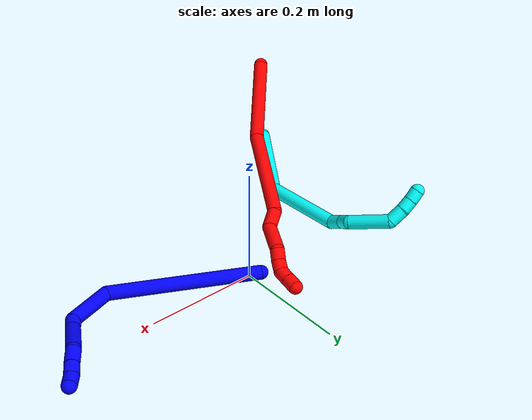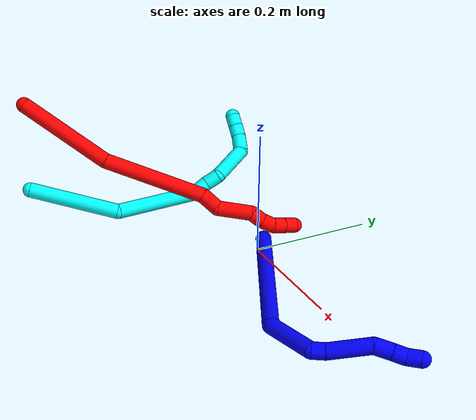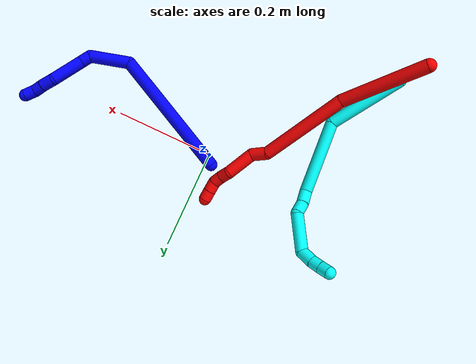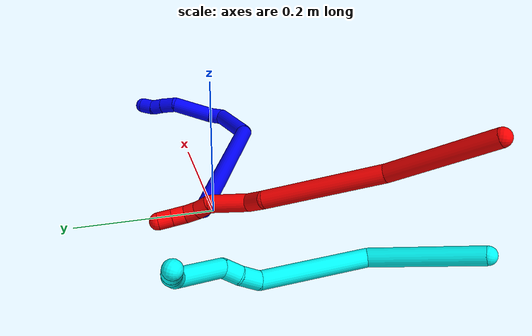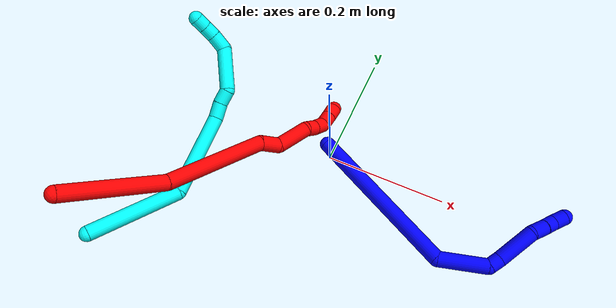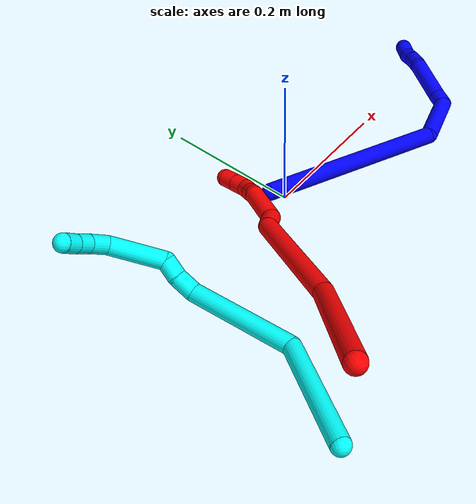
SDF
<sdf version="1.7">
 <world name="default">
  <plugin name="TubeGeneratorPlugin" filename="libtube_generator_plugin.so"/>
  <model name="photoneo_s_sensor">
   <static>1</static>
   <pose>0 0 2 1.57079 1.57079 3.14159</pose>
   <link name="link">
    <inertial><mass>0.1</mass></inertial>
    <sensor name="sensor" type="depth">
     <update_rate>30</update_rate>
     <camera>
      <horizontal_fov>1.22</horizontal_fov>
      <image><width>1920</width><height>1200</height><format>B8G8R8</format></image>
      <clip><near>0.1</near><far>4</far></clip>
      <depth_camera><output>points</output></depth_camera>
     </camera>
     <plugin name="camera_plugin" filename="libgazebo_ros_depth_camera.so">
      <baseline>0.2</baseline>
      <alwaysOn>1</alwaysOn>
      <updateRate>0.0</updateRate>
      <cameraName>camera_ir</cameraName>
      <imageTopicName>/camera/color/image_raw</imageTopicName>
      <cameraInfoTopicName>/camera/color/camera_info</cameraInfoTopicName>
      <depthImageTopicName>/camera/depth/image_raw</depthImageTopicName>
      <depthImageCameraInfoTopicName>/camera/depth/camera_info</depthImageCameraInfoTopicName>
      <pointCloudTopicName>/camera/depth/points</pointCloudTopicName>
      <frameName>fr_optical</frameName>
      <pointCloudCutoff>0.1</pointCloudCutoff>
      <pointCloudCutoffMax>2.0</pointCloudCutoffMax>
      <distortionK1>0</distortionK1>
      <distortionK2>0</distortionK2>
      <distortionK3>0</distortionK3>
      <distortionT1>0</distortionT1>
      <distortionT2>0</distortionT2>
      <CxPrime>0</CxPrime>
      <Cx>0</Cx>
      <Cy>0</Cy>
      <focalLength>0</focalLength>
      <hackBaseline>0</hackBaseline>
     </plugin>
    </sensor>
   </link>
  </model>
  <gravity>0 0 -9.8</gravity>
  <magnetic_field>6e-06 2.3e-05 -4.2e-05</magnetic_field>
  <atmosphere type="adiabatic"/>
  <physics name="default_physics" default="0" type="ode">
   <max_step_size>0.003</max_step_size>
   <real_time_factor>1</real_time_factor>
   <real_time_update_rate>1000</real_time_update_rate>
   <max_contacts>10000</max_contacts>
   <ode>
    <solver>
     <type>quick</type>
     <iters>100</iters>
     <sor>1.3</sor>
     <use_dynamic_moi_rescaling>0</use_dynamic_moi_rescaling>
    </solver>
    <constraints>
     <contact_max_correcting_vel>0</contact_max_correcting_vel>
     <contact_surface_layer>0.001</contact_surface_layer>
     <cfm>0</cfm>
     <erp>0.2</erp>
    </constraints>
   </ode>
  </physics>
  <scene><ambient>0.4 0.4 0.4 1</ambient><background>0.7 0.7 0.7 1</background><shadows>0</shadows></scene>
  <audio><device>default</device></audio>
  <spherical_coordinates>
   <surface_model>EARTH_WGS84</surface_model>
   <latitude_deg>0</latitude_deg>
   <longitude_deg>0</longitude_deg>
   <elevation>0</elevation>
   <heading_deg>0</heading_deg>
  </spherical_coordinates>
  <model name="bin">
   <static>1</static>
   <link name="bottom">
    <collision name="collision-bottom">
     <pose>0 0 -0.01 0 -0 0</pose>
     <geometry><box><size>0.8 0.6 0.02</size></box></geometry>
     <surface>
      <friction><ode><mu>100</mu><mu2>100</mu2></ode></friction>
      <contact><collide_bitmask>65535</collide_bitmask></contact>
     </surface>
    </collision>
   </link>
   <link name="west_wall">
    <collision name="collision-west_wall">
     <pose>-0.41 0 0.1 0 -0 0</pose>
     <geometry><box><size>0.02 0.6 0.2</size></box></geometry>
     <surface>
      <friction><ode><mu>100</mu><mu2>100</mu2></ode></friction>
      <contact><collide_bitmask>65535</collide_bitmask></contact>
     </surface>
    </collision>
   </link>
   <link name="east_wall">
    <collision name="collision-east_wall">
     <pose>0.41 0 0.1 0 -0 0</pose>
     <geometry><box><size>0.02 0.6 0.2</size></box></geometry>
     <surface>
      <friction><ode><mu>100</mu><mu2>100</mu2></ode></friction>
      <contact><collide_bitmask>65535</collide_bitmask></contact>
     </surface>
    </collision>
   </link>
   <link name="south_wall">
    <collision name="collision-south_wall">
     <pose>0 -0.31 0.1 0 -0 0</pose>
     <geometry><box><size>0.8 0.02 0.2</size></box></geometry>
     <surface>
      <friction><ode><mu>100</mu><mu2>100</mu2></ode></friction>
      <contact><collide_bitmask>65535</collide_bitmask></contact>
     </surface>
    </collision>
   </link>
   <link name="north_wall">
    <collision name="collision-north_wall">
     <pose>0 0.31 0.1 0 -0 0</pose>
     <geometry><box><size>0.8 0.02 0.2</size></box></geometry>
     <surface>
      <friction><ode><mu>100</mu><mu2>100</mu2></ode></friction>
      <contact><collide_bitmask>65535</collide_bitmask></contact>
     </surface>
    </collision>
   </link>
  </model>
  <model name="1">
   <static>0</static>
   <link name="1">
    <collision name="collision-cylinder-e_1_1_4">
     <pose>-0.001018 -0.007005 0.131473 0.05323 -0.007732 -0.000206</pose>
     <geometry><cylinder><radius>0.0125</radius><length>0.263327</length></cylinder></geometry>
     <surface>
      <friction><ode><mu>1.16</mu><mu2>1.16</mu2><slip1>0</slip1><slip2>0</slip2></ode></friction>
      <contact><ode><kp>1e+06</kp><kd>1</kd><max_vel>0</max_vel><min_depth>0.001</min_depth></ode></contact>
     </surface>
    </collision>
    <visual name="visual-cylinder-e_1_1_4">
     <pose>-0.001018 -0.007005 0.131473 0.05323 -0.007732 -0.000206</pose>
     <geometry><cylinder><radius>0.0125</radius><length>0.263327</length></cylinder></geometry>
     <material><ambient>0 0 1 1</ambient></material>
    </visual>
    <collision name="collision-cylinder-e_2_4_5">
     <pose>0.023924 -0.011041 0.29345 -0.09703 0.702778 -0.035596</pose>
     <geometry><cylinder><radius>0.0125</radius><length>0.08033</length></cylinder></geometry>
     <surface>
      <friction><ode><mu>1.16</mu><mu2>1.16</mu2><slip1>0</slip1><slip2>0</slip2></ode></friction>
      <contact><ode><kp>1e+06</kp><kd>1</kd><max_vel>0</max_vel><min_depth>0.001</min_depth></ode></contact>
     </surface>
    </collision>
    <visual name="visual-cylinder-e_2_4_5">
     <pose>0.023924 -0.011041 0.29345 -0.09703 0.702778 -0.035596</pose>
     <geometry><cylinder><radius>0.0125</radius><length>0.08033</length></cylinder></geometry>
     <material><ambient>0 0 1 1</ambient></material>
    </visual>
    <collision name="collision-cylinder-e_3_5_6">
     <pose>0.059972 -0.005813 0.325359 -1.01397 1.31299 -0.808717</pose>
     <geometry><cylinder><radius>0.0125</radius><length>0.020866</length></cylinder></geometry>
     <surface>
      <friction><ode><mu>1.16</mu><mu2>1.16</mu2><slip1>0</slip1><slip2>0</slip2></ode></friction>
      <contact><ode><kp>1e+06</kp><kd>1</kd><max_vel>0</max_vel><min_depth>0.001</min_depth></ode></contact>
     </surface>
    </collision>
    <visual name="visual-cylinder-e_3_5_6">
     <pose>0.059972 -0.005813 0.325359 -1.01397 1.31299 -0.808717</pose>
     <geometry><cylinder><radius>0.0125</radius><length>0.020866</length></cylinder></geometry>
     <material><ambient>0 0 1 1</ambient></material>
    </visual>
    <collision name="collision-cylinder-e_4_6_7">
     <pose>0.100298 0.009621 0.329941 -1.33429 1.14941 -0.943359</pose>
     <geometry><cylinder><radius>0.0125</radius><length>0.066273</length></cylinder></geometry>
     <surface>
      <friction><ode><mu>1.16</mu><mu2>1.16</mu2><slip1>0</slip1><slip2>0</slip2></ode></friction>
      <contact><ode><kp>1e+06</kp><kd>1</kd><max_vel>0</max_vel><min_depth>0.001</min_depth></ode></contact>
     </surface>
    </collision>
    <visual name="visual-cylinder-e_4_6_7">
     <pose>0.100298 0.009621 0.329941 -1.33429 1.14941 -0.943359</pose>
     <geometry><cylinder><radius>0.0125</radius><length>0.066273</length></cylinder></geometry>
     <material><ambient>0 0 1 1</ambient></material>
    </visual>
    <collision name="collision-cylinder-e_5_7_8">
     <pose>0.143513 0.022229 0.335931 0.199505 1.35304 0.160375</pose>
     <geometry><cylinder><radius>0.0125</radius><length>0.026582</length></cylinder></geometry>
     <surface>
      <friction><ode><mu>1.16</mu><mu2>1.16</mu2><slip1>0</slip1><slip2>0</slip2></ode></friction>
      <contact><ode><kp>1e+06</kp><kd>1</kd><max_vel>0</max_vel><min_depth>0.001</min_depth></ode></contact>
     </surface>
    </collision>
    <visual name="visual-cylinder-e_5_7_8">
     <pose>0.143513 0.022229 0.335931 0.199505 1.35304 0.160375</pose>
     <geometry><cylinder><radius>0.0125</radius><length>0.026582</length></cylinder></geometry>
     <material><ambient>0 0 1 1</ambient></material>
    </visual>
    <collision name="collision-cylinder-e_6_8_9">
     <pose>0.166634 0.020618 0.340196 0.622837 1.3965 0.52773</pose>
     <geometry><cylinder><radius>0.0125</radius><length>0.020601</length></cylinder></geometry>
     <surface>
      <friction><ode><mu>1.16</mu><mu2>1.16</mu2><slip1>0</slip1><slip2>0</slip2></ode></friction>
      <contact><ode><kp>1e+06</kp><kd>1</kd><max_vel>0</max_vel><min_depth>0.001</min_depth></ode></contact>
     </surface>
    </collision>
    <visual name="visual-cylinder-e_6_8_9">
     <pose>0.166634 0.020618 0.340196 0.622837 1.3965 0.52773</pose>
     <geometry><cylinder><radius>0.0125</radius><length>0.020601</length></cylinder></geometry>
     <material><ambient>0 0 1 1</ambient></material>
    </visual>
    <collision name="collision-cylinder-e_7_9_2">
     <pose>0.187141 0.02172 0.344691 -0.613798 1.22586 -0.438591</pose>
     <geometry><cylinder><radius>0.0125</radius><length>0.022023</length></cylinder></geometry>
     <surface>
      <friction><ode><mu>1.16</mu><mu2>1.16</mu2><slip1>0</slip1><slip2>0</slip2></ode></friction>
      <contact><ode><kp>1e+06</kp><kd>1</kd><max_vel>0</max_vel><min_depth>0.001</min_depth></ode></contact>
     </surface>
    </collision>
    <visual name="visual-cylinder-e_7_9_2">
     <pose>0.187141 0.02172 0.344691 -0.613798 1.22586 -0.438591</pose>
     <geometry><cylinder><radius>0.0125</radius><length>0.022023</length></cylinder></geometry>
     <material><ambient>0 0 1 1</ambient></material>
    </visual>
    <collision name="collision-sphere-2">
     <pose>0.197504 0.023865 0.347734 0 -0 0</pose>
     <geometry><sphere><radius>0.0125</radius></sphere></geometry>
     <surface>
      <friction><ode><mu>1.16</mu><mu2>1.16</mu2><slip1>0</slip1><slip2>0</slip2></ode></friction>
      <contact><ode><kp>1e+06</kp><kd>1</kd><max_vel>0</max_vel><min_depth>0.001</min_depth></ode></contact>
     </surface>
    </collision>
    <visual name="visual-sphere-2">
     <pose>0.197504 0.023865 0.347734 0 -0 0</pose>
     <geometry><sphere><radius>0.0125</radius></sphere></geometry>
     <material><ambient>0 0 1 1</ambient></material>
    </visual>
    <collision name="collision-sphere-9">
     <pose>0.176778 0.019576 0.341647 0 -0 0</pose>
     <geometry><sphere><radius>0.0125</radius></sphere></geometry>
     <surface>
      <friction><ode><mu>1.16</mu><mu2>1.16</mu2><slip1>0</slip1><slip2>0</slip2></ode></friction>
      <contact><ode><kp>1e+06</kp><kd>1</kd><max_vel>0</max_vel><min_depth>0.001</min_depth></ode></contact>
     </surface>
    </collision>
    <visual name="visual-sphere-9">
     <pose>0.176778 0.019576 0.341647 0 -0 0</pose>
     <geometry><sphere><radius>0.0125</radius></sphere></geometry>
     <material><ambient>0 0 1 1</ambient></material>
    </visual>
    <collision name="collision-sphere-4">
     <pose>-0.002036 -0.01401 0.262946 0 -0 0</pose>
     <geometry><sphere><radius>0.0125</radius></sphere></geometry>
     <surface>
      <friction><ode><mu>1.16</mu><mu2>1.16</mu2><slip1>0</slip1><slip2>0</slip2></ode></friction>
      <contact><ode><kp>1e+06</kp><kd>1</kd><max_vel>0</max_vel><min_depth>0.001</min_depth></ode></contact>
     </surface>
    </collision>
    <visual name="visual-sphere-4">
     <pose>-0.002036 -0.01401 0.262946 0 -0 0</pose>
     <geometry><sphere><radius>0.0125</radius></sphere></geometry>
     <material><ambient>0 0 1 1</ambient></material>
    </visual>
    <collision name="collision-sphere-1">
     <geometry><sphere><radius>0.0125</radius></sphere></geometry>
     <surface>
      <friction><ode><mu>1.16</mu><mu2>1.16</mu2><slip1>0</slip1><slip2>0</slip2></ode></friction>
      <contact><ode><kp>1e+06</kp><kd>1</kd><max_vel>0</max_vel><min_depth>0.001</min_depth></ode></contact>
     </surface>
    </collision>
    <visual name="visual-sphere-1">
     <geometry><sphere><radius>0.0125</radius></sphere></geometry>
     <material><ambient>0 0 1 1</ambient></material>
    </visual>
    <collision name="collision-sphere-8">
     <pose>0.15649 0.02166 0.338745 0 -0 0</pose>
     <geometry><sphere><radius>0.0125</radius></sphere></geometry>
     <surface>
      <friction><ode><mu>1.16</mu><mu2>1.16</mu2><slip1>0</slip1><slip2>0</slip2></ode></friction>
      <contact><ode><kp>1e+06</kp><kd>1</kd><max_vel>0</max_vel><min_depth>0.001</min_depth></ode></contact>
     </surface>
    </collision>
    <visual name="visual-sphere-8">
     <pose>0.15649 0.02166 0.338745 0 -0 0</pose>
     <geometry><sphere><radius>0.0125</radius></sphere></geometry>
     <material><ambient>0 0 1 1</ambient></material>
    </visual>
    <collision name="collision-sphere-5">
     <pose>0.049884 -0.008072 0.323953 0 -0 0</pose>
     <geometry><sphere><radius>0.0125</radius></sphere></geometry>
     <surface>
      <friction><ode><mu>1.16</mu><mu2>1.16</mu2><slip1>0</slip1><slip2>0</slip2></ode></friction>
      <contact><ode><kp>1e+06</kp><kd>1</kd><max_vel>0</max_vel><min_depth>0.001</min_depth></ode></contact>
     </surface>
    </collision>
    <visual name="visual-sphere-5">
     <pose>0.049884 -0.008072 0.323953 0 -0 0</pose>
     <geometry><sphere><radius>0.0125</radius></sphere></geometry>
     <material><ambient>0 0 1 1</ambient></material>
    </visual>
    <collision name="collision-sphere-6">
     <pose>0.070061 -0.003555 0.326765 0 -0 0</pose>
     <geometry><sphere><radius>0.0125</radius></sphere></geometry>
     <surface>
      <friction><ode><mu>1.16</mu><mu2>1.16</mu2><slip1>0</slip1><slip2>0</slip2></ode></friction>
      <contact><ode><kp>1e+06</kp><kd>1</kd><max_vel>0</max_vel><min_depth>0.001</min_depth></ode></contact>
     </surface>
    </collision>
    <visual name="visual-sphere-6">
     <pose>0.070061 -0.003555 0.326765 0 -0 0</pose>
     <geometry><sphere><radius>0.0125</radius></sphere></geometry>
     <material><ambient>0 0 1 1</ambient></material>
    </visual>
    <collision name="collision-sphere-7">
     <pose>0.130536 0.022798 0.333116 0 -0 0</pose>
     <geometry><sphere><radius>0.0125</radius></sphere></geometry>
     <surface>
      <friction><ode><mu>1.16</mu><mu2>1.16</mu2><slip1>0</slip1><slip2>0</slip2></ode></friction>
      <contact><ode><kp>1e+06</kp><kd>1</kd><max_vel>0</max_vel><min_depth>0.001</min_depth></ode></contact>
     </surface>
    </collision>
    <visual name="visual-sphere-7">
     <pose>0.130536 0.022798 0.333116 0 -0 0</pose>
     <geometry><sphere><radius>0.0125</radius></sphere></geometry>
     <material><ambient>0 0 1 1</ambient></material>
    </visual>
    <inertial>
     <pose>0.041842 -0.001442 0.220754 0 -0 0</pose>
     <mass>0.5</mass>
     <inertia><ixx>0.00158</ixx><ixy>0</ixy><ixz>0</ixz><iyy>0.001597</iyy><iyz>0</iyz><izz>4.4e-05</izz></inertia>
    </inertial>
   </link>
   <pose>-0.011557 0.016716 0.01164 1.50938 0.223727 1.11888</pose>
  </model>
  <model name="2">
   <static>0</static>
   <link name="2">
    <collision name="collision-cylinder-e_1_1_4">
     <pose>-0.003982 0.048331 -0.063468 -2.49078 -0.049869 0.147566</pose>
     <geometry><cylinder><radius>0.0125</radius><length>0.159749</length></cylinder></geometry>
     <surface>
      <friction><ode><mu>1.16</mu><mu2>1.16</mu2><slip1>0</slip1><slip2>0</slip2></ode></friction>
      <contact><ode><kp>1e+06</kp><kd>1</kd><max_vel>0</max_vel><min_depth>0.001</min_depth></ode></contact>
     </surface>
    </collision>
    <visual name="visual-cylinder-e_1_1_4">
     <pose>-0.003982 0.048331 -0.063468 -2.49078 -0.049869 0.147566</pose>
     <geometry><cylinder><radius>0.0125</radius><length>0.159749</length></cylinder></geometry>
     <material><ambient>1 0 0 1</ambient></material>
    </visual>
    <collision name="collision-cylinder-e_2_4_5">
     <pose>0.001401 0.130461 -0.204197 -2.7292 0.110592 -0.517405</pose>
     <geometry><cylinder><radius>0.0125</radius><length>0.169699</length></cylinder></geometry>
     <surface>
      <friction><ode><mu>1.16</mu><mu2>1.16</mu2><slip1>0</slip1><slip2>0</slip2></ode></friction>
      <contact><ode><kp>1e+06</kp><kd>1</kd><max_vel>0</max_vel><min_depth>0.001</min_depth></ode></contact>
     </surface>
    </collision>
    <visual name="visual-cylinder-e_2_4_5">
     <pose>0.001401 0.130461 -0.204197 -2.7292 0.110592 -0.517405</pose>
     <geometry><cylinder><radius>0.0125</radius><length>0.169699</length></cylinder></geometry>
     <material><ambient>1 0 0 1</ambient></material>
    </visual>
    <collision name="collision-cylinder-e_3_5_6">
     <pose>0.006239 0.174671 -0.293114 -2.41258 -0.281929 0.712127</pose>
     <geometry><cylinder><radius>0.0125</radius><length>0.03254</length></cylinder></geometry>
     <surface>
      <friction><ode><mu>1.16</mu><mu2>1.16</mu2><slip1>0</slip1><slip2>0</slip2></ode></friction>
      <contact><ode><kp>1e+06</kp><kd>1</kd><max_vel>0</max_vel><min_depth>0.001</min_depth></ode></contact>
     </surface>
    </collision>
    <visual name="visual-cylinder-e_3_5_6">
     <pose>0.006239 0.174671 -0.293114 -2.41258 -0.281929 0.712127</pose>
     <geometry><cylinder><radius>0.0125</radius><length>0.03254</length></cylinder></geometry>
     <material><ambient>1 0 0 1</ambient></material>
    </visual>
    <collision name="collision-cylinder-e_4_6_7">
     <pose>0.004003 0.190935 -0.332189 -2.93127 0.081517 -0.737402</pose>
     <geometry><cylinder><radius>0.0125</radius><length>0.05626</length></cylinder></geometry>
     <surface>
      <friction><ode><mu>1.16</mu><mu2>1.16</mu2><slip1>0</slip1><slip2>0</slip2></ode></friction>
      <contact><ode><kp>1e+06</kp><kd>1</kd><max_vel>0</max_vel><min_depth>0.001</min_depth></ode></contact>
     </surface>
    </collision>
    <visual name="visual-cylinder-e_4_6_7">
     <pose>0.004003 0.190935 -0.332189 -2.93127 0.081517 -0.737402</pose>
     <geometry><cylinder><radius>0.0125</radius><length>0.05626</length></cylinder></geometry>
     <material><ambient>1 0 0 1</ambient></material>
    </visual>
    <collision name="collision-cylinder-e_5_7_8">
     <pose>0.007751 0.203608 -0.36769 -2.44073 0.136879 -0.370756</pose>
     <geometry><cylinder><radius>0.0125</radius><length>0.02135</length></cylinder></geometry>
     <surface>
      <friction><ode><mu>1.16</mu><mu2>1.16</mu2><slip1>0</slip1><slip2>0</slip2></ode></friction>
      <contact><ode><kp>1e+06</kp><kd>1</kd><max_vel>0</max_vel><min_depth>0.001</min_depth></ode></contact>
     </surface>
    </collision>
    <visual name="visual-cylinder-e_5_7_8">
     <pose>0.007751 0.203608 -0.36769 -2.44073 0.136879 -0.370756</pose>
     <geometry><cylinder><radius>0.0125</radius><length>0.02135</length></cylinder></geometry>
     <material><ambient>1 0 0 1</ambient></material>
    </visual>
    <collision name="collision-cylinder-e_6_8_9">
     <pose>0.010774 0.215173 -0.384466 -2.64195 0.156861 -0.597598</pose>
     <geometry><cylinder><radius>0.0125</radius><length>0.020055</length></cylinder></geometry>
     <surface>
      <friction><ode><mu>1.16</mu><mu2>1.16</mu2><slip1>0</slip1><slip2>0</slip2></ode></friction>
      <contact><ode><kp>1e+06</kp><kd>1</kd><max_vel>0</max_vel><min_depth>0.001</min_depth></ode></contact>
     </surface>
    </collision>
    <visual name="visual-cylinder-e_6_8_9">
     <pose>0.010774 0.215173 -0.384466 -2.64195 0.156861 -0.597598</pose>
     <geometry><cylinder><radius>0.0125</radius><length>0.020055</length></cylinder></geometry>
     <material><ambient>1 0 0 1</ambient></material>
    </visual>
    <collision name="collision-cylinder-e_7_9_10">
     <pose>0.016789 0.221124 -0.402153 -3.00835 0.455827 -2.58141</pose>
     <geometry><cylinder><radius>0.0125</radius><length>0.020211</length></cylinder></geometry>
     <surface>
      <friction><ode><mu>1.16</mu><mu2>1.16</mu2><slip1>0</slip1><slip2>0</slip2></ode></friction>
      <contact><ode><kp>1e+06</kp><kd>1</kd><max_vel>0</max_vel><min_depth>0.001</min_depth></ode></contact>
     </surface>
    </collision>
    <visual name="visual-cylinder-e_7_9_10">
     <pose>0.016789 0.221124 -0.402153 -3.00835 0.455827 -2.58141</pose>
     <geometry><cylinder><radius>0.0125</radius><length>0.020211</length></cylinder></geometry>
     <material><ambient>1 0 0 1</ambient></material>
    </visual>
    <collision name="collision-cylinder-e_8_10_2">
     <pose>0.025795 0.223413 -0.420058 -3.02051 0.469769 -2.64544</pose>
     <geometry><cylinder><radius>0.0125</radius><length>0.020136</length></cylinder></geometry>
     <surface>
      <friction><ode><mu>1.16</mu><mu2>1.16</mu2><slip1>0</slip1><slip2>0</slip2></ode></friction>
      <contact><ode><kp>1e+06</kp><kd>1</kd><max_vel>0</max_vel><min_depth>0.001</min_depth></ode></contact>
     </surface>
    </collision>
    <visual name="visual-cylinder-e_8_10_2">
     <pose>0.025795 0.223413 -0.420058 -3.02051 0.469769 -2.64544</pose>
     <geometry><cylinder><radius>0.0125</radius><length>0.020136</length></cylinder></geometry>
     <material><ambient>1 0 0 1</ambient></material>
    </visual>
    <collision name="collision-sphere-2">
     <pose>0.030353 0.224498 -0.42897 0 -0 0</pose>
     <geometry><sphere><radius>0.0125</radius></sphere></geometry>
     <surface>
      <friction><ode><mu>1.16</mu><mu2>1.16</mu2><slip1>0</slip1><slip2>0</slip2></ode></friction>
      <contact><ode><kp>1e+06</kp><kd>1</kd><max_vel>0</max_vel><min_depth>0.001</min_depth></ode></contact>
     </surface>
    </collision>
    <visual name="visual-sphere-2">
     <pose>0.030353 0.224498 -0.42897 0 -0 0</pose>
     <geometry><sphere><radius>0.0125</radius></sphere></geometry>
     <material><ambient>1 0 0 1</ambient></material>
    </visual>
    <collision name="collision-sphere-10">
     <pose>0.021237 0.222329 -0.411146 0 -0 0</pose>
     <geometry><sphere><radius>0.0125</radius></sphere></geometry>
     <surface>
      <friction><ode><mu>1.16</mu><mu2>1.16</mu2><slip1>0</slip1><slip2>0</slip2></ode></friction>
      <contact><ode><kp>1e+06</kp><kd>1</kd><max_vel>0</max_vel><min_depth>0.001</min_depth></ode></contact>
     </surface>
    </collision>
    <visual name="visual-sphere-10">
     <pose>0.021237 0.222329 -0.411146 0 -0 0</pose>
     <geometry><sphere><radius>0.0125</radius></sphere></geometry>
     <material><ambient>1 0 0 1</ambient></material>
    </visual>
    <collision name="collision-sphere-9">
     <pose>0.01234 0.219918 -0.39316 0 -0 0</pose>
     <geometry><sphere><radius>0.0125</radius></sphere></geometry>
     <surface>
      <friction><ode><mu>1.16</mu><mu2>1.16</mu2><slip1>0</slip1><slip2>0</slip2></ode></friction>
      <contact><ode><kp>1e+06</kp><kd>1</kd><max_vel>0</max_vel><min_depth>0.001</min_depth></ode></contact>
     </surface>
    </collision>
    <visual name="visual-sphere-9">
     <pose>0.01234 0.219918 -0.39316 0 -0 0</pose>
     <geometry><sphere><radius>0.0125</radius></sphere></geometry>
     <material><ambient>1 0 0 1</ambient></material>
    </visual>
    <collision name="collision-sphere-4">
     <pose>-0.007963 0.096661 -0.126936 0 -0 0</pose>
     <geometry><sphere><radius>0.0125</radius></sphere></geometry>
     <surface>
      <friction><ode><mu>1.16</mu><mu2>1.16</mu2><slip1>0</slip1><slip2>0</slip2></ode></friction>
      <contact><ode><kp>1e+06</kp><kd>1</kd><max_vel>0</max_vel><min_depth>0.001</min_depth></ode></contact>
     </surface>
    </collision>
    <visual name="visual-sphere-4">
     <pose>-0.007963 0.096661 -0.126936 0 -0 0</pose>
     <geometry><sphere><radius>0.0125</radius></sphere></geometry>
     <material><ambient>1 0 0 1</ambient></material>
    </visual>
    <collision name="collision-sphere-1">
     <geometry><sphere><radius>0.0125</radius></sphere></geometry>
     <surface>
      <friction><ode><mu>1.16</mu><mu2>1.16</mu2><slip1>0</slip1><slip2>0</slip2></ode></friction>
      <contact><ode><kp>1e+06</kp><kd>1</kd><max_vel>0</max_vel><min_depth>0.001</min_depth></ode></contact>
     </surface>
    </collision>
    <visual name="visual-sphere-1">
     <geometry><sphere><radius>0.0125</radius></sphere></geometry>
     <material><ambient>1 0 0 1</ambient></material>
    </visual>
    <collision name="collision-sphere-8">
     <pose>0.009207 0.210427 -0.375772 0 -0 0</pose>
     <geometry><sphere><radius>0.0125</radius></sphere></geometry>
     <surface>
      <friction><ode><mu>1.16</mu><mu2>1.16</mu2><slip1>0</slip1><slip2>0</slip2></ode></friction>
      <contact><ode><kp>1e+06</kp><kd>1</kd><max_vel>0</max_vel><min_depth>0.001</min_depth></ode></contact>
     </surface>
    </collision>
    <visual name="visual-sphere-8">
     <pose>0.009207 0.210427 -0.375772 0 -0 0</pose>
     <geometry><sphere><radius>0.0125</radius></sphere></geometry>
     <material><ambient>1 0 0 1</ambient></material>
    </visual>
    <collision name="collision-sphere-5">
     <pose>0.010766 0.164261 -0.281458 0 -0 0</pose>
     <geometry><sphere><radius>0.0125</radius></sphere></geometry>
     <surface>
      <friction><ode><mu>1.16</mu><mu2>1.16</mu2><slip1>0</slip1><slip2>0</slip2></ode></friction>
      <contact><ode><kp>1e+06</kp><kd>1</kd><max_vel>0</max_vel><min_depth>0.001</min_depth></ode></contact>
     </surface>
    </collision>
    <visual name="visual-sphere-5">
     <pose>0.010766 0.164261 -0.281458 0 -0 0</pose>
     <geometry><sphere><radius>0.0125</radius></sphere></geometry>
     <material><ambient>1 0 0 1</ambient></material>
    </visual>
    <collision name="collision-sphere-6">
     <pose>0.001713 0.185081 -0.30477 0 -0 0</pose>
     <geometry><sphere><radius>0.0125</radius></sphere></geometry>
     <surface>
      <friction><ode><mu>1.16</mu><mu2>1.16</mu2><slip1>0</slip1><slip2>0</slip2></ode></friction>
      <contact><ode><kp>1e+06</kp><kd>1</kd><max_vel>0</max_vel><min_depth>0.001</min_depth></ode></contact>
     </surface>
    </collision>
    <visual name="visual-sphere-6">
     <pose>0.001713 0.185081 -0.30477 0 -0 0</pose>
     <geometry><sphere><radius>0.0125</radius></sphere></geometry>
     <material><ambient>1 0 0 1</ambient></material>
    </visual>
    <collision name="collision-sphere-7">
     <pose>0.006294 0.196788 -0.359607 0 -0 0</pose>
     <geometry><sphere><radius>0.0125</radius></sphere></geometry>
     <surface>
      <friction><ode><mu>1.16</mu><mu2>1.16</mu2><slip1>0</slip1><slip2>0</slip2></ode></friction>
      <contact><ode><kp>1e+06</kp><kd>1</kd><max_vel>0</max_vel><min_depth>0.001</min_depth></ode></contact>
     </surface>
    </collision>
    <visual name="visual-sphere-7">
     <pose>0.006294 0.196788 -0.359607 0 -0 0</pose>
     <geometry><sphere><radius>0.0125</radius></sphere></geometry>
     <material><ambient>1 0 0 1</ambient></material>
    </visual>
    <inertial>
     <pose>0.002541 0.127832 -0.21033 0 -0 0</pose>
     <mass>0.5</mass>
     <inertia>
      <ixx>0.000553</ixx>
      <ixy>0</ixy>
      <ixz>0</ixz>
      <iyy>-0.000751</iyy>
      <iyz>0</iyz>
      <izz>-0.000446</izz>
     </inertia>
    </inertial>
   </link>
   <pose>-0.269203 -0.289968 0.205618 -1.6402 0.313001 2.64177</pose>
  </model>
  <model name="3">
   <static>0</static>
   <link name="3">
    <collision name="collision-cylinder-e_1_1_4">
     <pose>-0.001629 0.02477 -0.072286 -2.81146 -0.021314 0.12778</pose>
     <geometry><cylinder><radius>0.0125</radius><length>0.152859</length></cylinder></geometry>
     <surface>
      <friction><ode><mu>1.16</mu><mu2>1.16</mu2><slip1>0</slip1><slip2>0</slip2></ode></friction>
      <contact><ode><kp>1e+06</kp><kd>1</kd><max_vel>0</max_vel><min_depth>0.001</min_depth></ode></contact>
     </surface>
    </collision>
    <visual name="visual-cylinder-e_1_1_4">
     <pose>-0.001629 0.02477 -0.072286 -2.81146 -0.021314 0.12778</pose>
     <geometry><cylinder><radius>0.0125</radius><length>0.152859</length></cylinder></geometry>
     <material><ambient>0.003922 1 0.996078 1</ambient></material>
    </visual>
    <collision name="collision-cylinder-e_2_4_5">
     <pose>0.037278 0.085752 -0.194208 -2.51133 0.583193 -1.4883</pose>
     <geometry><cylinder><radius>0.0125</radius><length>0.147217</length></cylinder></geometry>
     <surface>
      <friction><ode><mu>1.16</mu><mu2>1.16</mu2><slip1>0</slip1><slip2>0</slip2></ode></friction>
      <contact><ode><kp>1e+06</kp><kd>1</kd><max_vel>0</max_vel><min_depth>0.001</min_depth></ode></contact>
     </surface>
    </collision>
    <visual name="visual-cylinder-e_2_4_5">
     <pose>0.037278 0.085752 -0.194208 -2.51133 0.583193 -1.4883</pose>
     <geometry><cylinder><radius>0.0125</radius><length>0.147217</length></cylinder></geometry>
     <material><ambient>0.003922 1 0.996078 1</ambient></material>
    </visual>
    <collision name="collision-cylinder-e_3_5_6">
     <pose>0.08881 0.122683 -0.252888 -3.06218 0.881027 -2.97343</pose>
     <geometry><cylinder><radius>0.0125</radius><length>0.028509</length></cylinder></geometry>
     <surface>
      <friction><ode><mu>1.16</mu><mu2>1.16</mu2><slip1>0</slip1><slip2>0</slip2></ode></friction>
      <contact><ode><kp>1e+06</kp><kd>1</kd><max_vel>0</max_vel><min_depth>0.001</min_depth></ode></contact>
     </surface>
    </collision>
    <visual name="visual-cylinder-e_3_5_6">
     <pose>0.08881 0.122683 -0.252888 -3.06218 0.881027 -2.97343</pose>
     <geometry><cylinder><radius>0.0125</radius><length>0.028509</length></cylinder></geometry>
     <material><ambient>0.003922 1 0.996078 1</ambient></material>
    </visual>
    <collision name="collision-cylinder-e_4_6_7">
     <pose>0.107724 0.122398 -0.271474 3.03667 0.689897 2.85139</pose>
     <geometry><cylinder><radius>0.0125</radius><length>0.024882</length></cylinder></geometry>
     <surface>
      <friction><ode><mu>1.16</mu><mu2>1.16</mu2><slip1>0</slip1><slip2>0</slip2></ode></friction>
      <contact><ode><kp>1e+06</kp><kd>1</kd><max_vel>0</max_vel><min_depth>0.001</min_depth></ode></contact>
     </surface>
    </collision>
    <visual name="visual-cylinder-e_4_6_7">
     <pose>0.107724 0.122398 -0.271474 3.03667 0.689897 2.85139</pose>
     <geometry><cylinder><radius>0.0125</radius><length>0.024882</length></cylinder></geometry>
     <material><ambient>0.003922 1 0.996078 1</ambient></material>
    </visual>
    <collision name="collision-cylinder-e_5_7_8">
     <pose>0.149173 0.135147 -0.292435 -2.26364 1.081 -1.81374</pose>
     <geometry><cylinder><radius>0.0125</radius><length>0.075997</length></cylinder></geometry>
     <surface>
      <friction><ode><mu>1.16</mu><mu2>1.16</mu2><slip1>0</slip1><slip2>0</slip2></ode></friction>
      <contact><ode><kp>1e+06</kp><kd>1</kd><max_vel>0</max_vel><min_depth>0.001</min_depth></ode></contact>
     </surface>
    </collision>
    <visual name="visual-cylinder-e_5_7_8">
     <pose>0.149173 0.135147 -0.292435 -2.26364 1.081 -1.81374</pose>
     <geometry><cylinder><radius>0.0125</radius><length>0.075997</length></cylinder></geometry>
     <material><ambient>0.003922 1 0.996078 1</ambient></material>
    </visual>
    <collision name="collision-cylinder-e_6_8_9">
     <pose>0.196492 0.147499 -0.299576 0.317055 1.25523 0.230927</pose>
     <geometry><cylinder><radius>0.0125</radius><length>0.029008</length></cylinder></geometry>
     <surface>
      <friction><ode><mu>1.16</mu><mu2>1.16</mu2><slip1>0</slip1><slip2>0</slip2></ode></friction>
      <contact><ode><kp>1e+06</kp><kd>1</kd><max_vel>0</max_vel><min_depth>0.001</min_depth></ode></contact>
     </surface>
    </collision>
    <visual name="visual-cylinder-e_6_8_9">
     <pose>0.196492 0.147499 -0.299576 0.317055 1.25523 0.230927</pose>
     <geometry><cylinder><radius>0.0125</radius><length>0.029008</length></cylinder></geometry>
     <material><ambient>0.003922 1 0.996078 1</ambient></material>
    </visual>
    <collision name="collision-cylinder-e_7_9_10">
     <pose>0.219772 0.144209 -0.291052 0.417957 1.11553 0.263075</pose>
     <geometry><cylinder><radius>0.0125</radius><length>0.021137</length></cylinder></geometry>
     <surface>
      <friction><ode><mu>1.16</mu><mu2>1.16</mu2><slip1>0</slip1><slip2>0</slip2></ode></friction>
      <contact><ode><kp>1e+06</kp><kd>1</kd><max_vel>0</max_vel><min_depth>0.001</min_depth></ode></contact>
     </surface>
    </collision>
    <visual name="visual-cylinder-e_7_9_10">
     <pose>0.219772 0.144209 -0.291052 0.417957 1.11553 0.263075</pose>
     <geometry><cylinder><radius>0.0125</radius><length>0.021137</length></cylinder></geometry>
     <material><ambient>0.003922 1 0.996078 1</ambient></material>
    </visual>
    <collision name="collision-cylinder-e_8_10_2">
     <pose>0.238202 0.139542 -0.282767 0.603146 1.06904 0.364219</pose>
     <geometry><cylinder><radius>0.0125</radius><length>0.02039</length></cylinder></geometry>
     <surface>
      <friction><ode><mu>1.16</mu><mu2>1.16</mu2><slip1>0</slip1><slip2>0</slip2></ode></friction>
      <contact><ode><kp>1e+06</kp><kd>1</kd><max_vel>0</max_vel><min_depth>0.001</min_depth></ode></contact>
     </surface>
    </collision>
    <visual name="visual-cylinder-e_8_10_2">
     <pose>0.238202 0.139542 -0.282767 0.603146 1.06904 0.364219</pose>
     <geometry><cylinder><radius>0.0125</radius><length>0.02039</length></cylinder></geometry>
     <material><ambient>0.003922 1 0.996078 1</ambient></material>
    </visual>
    <collision name="collision-sphere-2">
     <pose>0.247141 0.13676 -0.278729 0 -0 0</pose>
     <geometry><sphere><radius>0.0125</radius></sphere></geometry>
     <surface>
      <friction><ode><mu>1.16</mu><mu2>1.16</mu2><slip1>0</slip1><slip2>0</slip2></ode></friction>
      <contact><ode><kp>1e+06</kp><kd>1</kd><max_vel>0</max_vel><min_depth>0.001</min_depth></ode></contact>
     </surface>
    </collision>
    <visual name="visual-sphere-2">
     <pose>0.247141 0.13676 -0.278729 0 -0 0</pose>
     <geometry><sphere><radius>0.0125</radius></sphere></geometry>
     <material><ambient>0.003922 1 0.996078 1</ambient></material>
    </visual>
    <collision name="collision-sphere-10">
     <pose>0.229264 0.142323 -0.286805 0 -0 0</pose>
     <geometry><sphere><radius>0.0125</radius></sphere></geometry>
     <surface>
      <friction><ode><mu>1.16</mu><mu2>1.16</mu2><slip1>0</slip1><slip2>0</slip2></ode></friction>
      <contact><ode><kp>1e+06</kp><kd>1</kd><max_vel>0</max_vel><min_depth>0.001</min_depth></ode></contact>
     </surface>
    </collision>
    <visual name="visual-sphere-10">
     <pose>0.229264 0.142323 -0.286805 0 -0 0</pose>
     <geometry><sphere><radius>0.0125</radius></sphere></geometry>
     <material><ambient>0.003922 1 0.996078 1</ambient></material>
    </visual>
    <collision name="collision-sphere-9">
     <pose>0.21028 0.146095 -0.295299 0 -0 0</pose>
     <geometry><sphere><radius>0.0125</radius></sphere></geometry>
     <surface>
      <friction><ode><mu>1.16</mu><mu2>1.16</mu2><slip1>0</slip1><slip2>0</slip2></ode></friction>
      <contact><ode><kp>1e+06</kp><kd>1</kd><max_vel>0</max_vel><min_depth>0.001</min_depth></ode></contact>
     </surface>
    </collision>
    <visual name="visual-sphere-9">
     <pose>0.21028 0.146095 -0.295299 0 -0 0</pose>
     <geometry><sphere><radius>0.0125</radius></sphere></geometry>
     <material><ambient>0.003922 1 0.996078 1</ambient></material>
    </visual>
    <collision name="collision-sphere-4">
     <pose>-0.003258 0.049541 -0.144571 0 -0 0</pose>
     <geometry><sphere><radius>0.0125</radius></sphere></geometry>
     <surface>
      <friction><ode><mu>1.16</mu><mu2>1.16</mu2><slip1>0</slip1><slip2>0</slip2></ode></friction>
      <contact><ode><kp>1e+06</kp><kd>1</kd><max_vel>0</max_vel><min_depth>0.001</min_depth></ode></contact>
     </surface>
    </collision>
    <visual name="visual-sphere-4">
     <pose>-0.003258 0.049541 -0.144571 0 -0 0</pose>
     <geometry><sphere><radius>0.0125</radius></sphere></geometry>
     <material><ambient>0.003922 1 0.996078 1</ambient></material>
    </visual>
    <collision name="collision-sphere-1">
     <geometry><sphere><radius>0.0125</radius></sphere></geometry>
     <surface>
      <friction><ode><mu>1.16</mu><mu2>1.16</mu2><slip1>0</slip1><slip2>0</slip2></ode></friction>
      <contact><ode><kp>1e+06</kp><kd>1</kd><max_vel>0</max_vel><min_depth>0.001</min_depth></ode></contact>
     </surface>
    </collision>
    <visual name="visual-sphere-1">
     <geometry><sphere><radius>0.0125</radius></sphere></geometry>
     <material><ambient>0.003922 1 0.996078 1</ambient></material>
    </visual>
    <collision name="collision-sphere-8">
     <pose>0.182704 0.148902 -0.303853 0 -0 0</pose>
     <geometry><sphere><radius>0.0125</radius></sphere></geometry>
     <surface>
      <friction><ode><mu>1.16</mu><mu2>1.16</mu2><slip1>0</slip1><slip2>0</slip2></ode></friction>
      <contact><ode><kp>1e+06</kp><kd>1</kd><max_vel>0</max_vel><min_depth>0.001</min_depth></ode></contact>
     </surface>
    </collision>
    <visual name="visual-sphere-8">
     <pose>0.182704 0.148902 -0.303853 0 -0 0</pose>
     <geometry><sphere><radius>0.0125</radius></sphere></geometry>
     <material><ambient>0.003922 1 0.996078 1</ambient></material>
    </visual>
    <collision name="collision-sphere-5">
     <pose>0.077814 0.121963 -0.243846 0 -0 0</pose>
     <geometry><sphere><radius>0.0125</radius></sphere></geometry>
     <surface>
      <friction><ode><mu>1.16</mu><mu2>1.16</mu2><slip1>0</slip1><slip2>0</slip2></ode></friction>
      <contact><ode><kp>1e+06</kp><kd>1</kd><max_vel>0</max_vel><min_depth>0.001</min_depth></ode></contact>
     </surface>
    </collision>
    <visual name="visual-sphere-5">
     <pose>0.077814 0.121963 -0.243846 0 -0 0</pose>
     <geometry><sphere><radius>0.0125</radius></sphere></geometry>
     <material><ambient>0.003922 1 0.996078 1</ambient></material>
    </visual>
    <collision name="collision-sphere-6">
     <pose>0.099806 0.123403 -0.261931 0 -0 0</pose>
     <geometry><sphere><radius>0.0125</radius></sphere></geometry>
     <surface>
      <friction><ode><mu>1.16</mu><mu2>1.16</mu2><slip1>0</slip1><slip2>0</slip2></ode></friction>
      <contact><ode><kp>1e+06</kp><kd>1</kd><max_vel>0</max_vel><min_depth>0.001</min_depth></ode></contact>
     </surface>
    </collision>
    <visual name="visual-sphere-6">
     <pose>0.099806 0.123403 -0.261931 0 -0 0</pose>
     <geometry><sphere><radius>0.0125</radius></sphere></geometry>
     <material><ambient>0.003922 1 0.996078 1</ambient></material>
    </visual>
    <collision name="collision-sphere-7">
     <pose>0.115642 0.121393 -0.281017 0 -0 0</pose>
     <geometry><sphere><radius>0.0125</radius></sphere></geometry>
     <surface>
      <friction><ode><mu>1.16</mu><mu2>1.16</mu2><slip1>0</slip1><slip2>0</slip2></ode></friction>
      <contact><ode><kp>1e+06</kp><kd>1</kd><max_vel>0</max_vel><min_depth>0.001</min_depth></ode></contact>
     </surface>
    </collision>
    <visual name="visual-sphere-7">
     <pose>0.115642 0.121393 -0.281017 0 -0 0</pose>
     <geometry><sphere><radius>0.0125</radius></sphere></geometry>
     <material><ambient>0.003922 1 0.996078 1</ambient></material>
    </visual>
    <inertial>
     <pose>0.07398 0.086793 -0.192874 0 -0 0</pose>
     <mass>0.5</mass>
     <inertia>
      <ixx>0.000129</ixx>
      <ixy>0</ixy>
      <ixz>0</ixz>
      <iyy>-0.000365</iyy>
      <iyz>0</iyz>
      <izz>-0.000455</izz>
     </inertia>
    </inertial>
   </link>
   <pose>-0.275749 -0.288488 0.048456 -1.64919 -0.636874 2.44094</pose>
  </model>
 </world>
</sdf>
